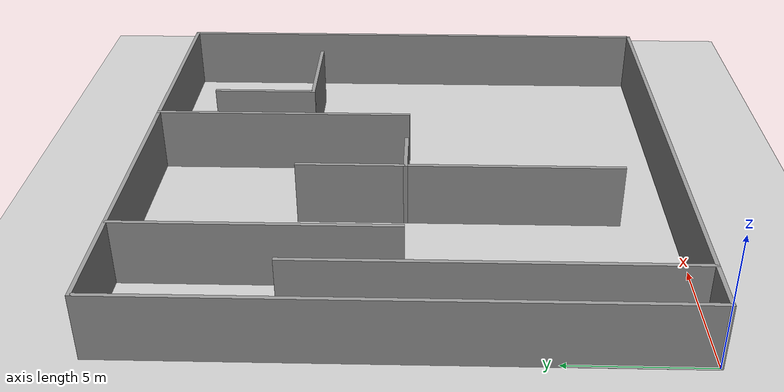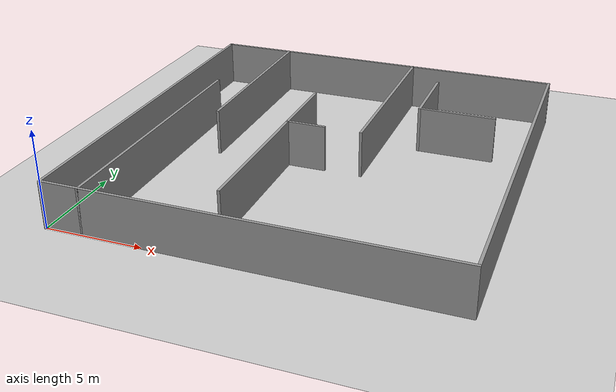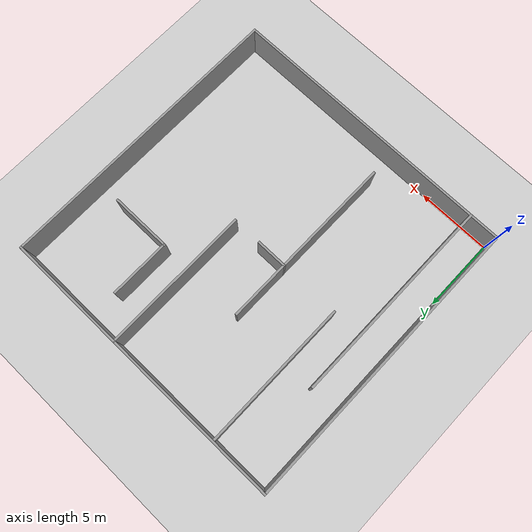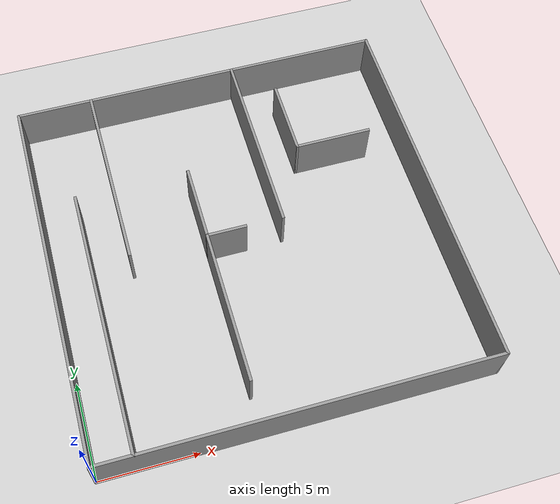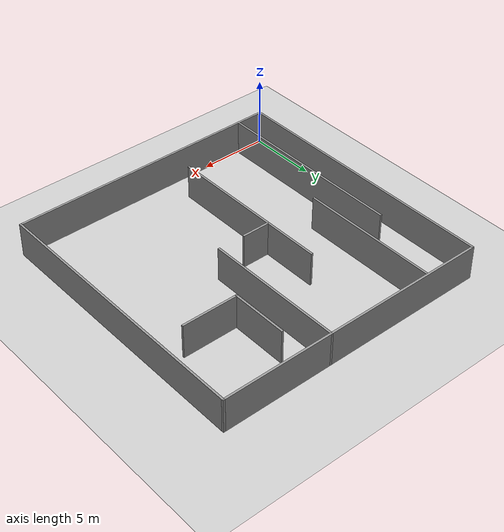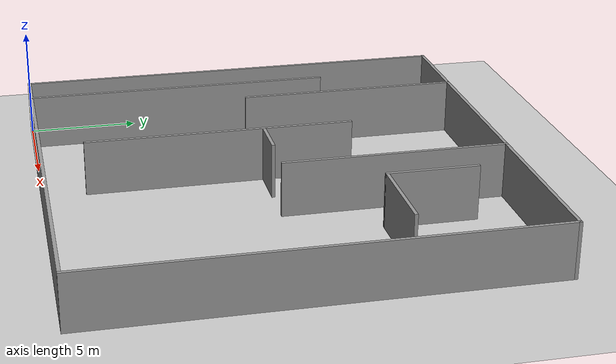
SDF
<sdf version="1.7">
 <world name="default">
  <light name="sun" type="directional">
   <pose>0 0 10 0 -0 0</pose>
   <diffuse>0.8 0.8 0.8 1</diffuse>
   <specular>0.2 0.2 0.2 1</specular>
   <attenuation>
    <range>1000</range>
    <constant>0.9</constant>
    <linear>0.01</linear>
    <quadratic>0.001</quadratic>
   </attenuation>
   <direction>-0.5 0.1 -0.9</direction>
   <spot><inner_angle>0</inner_angle><outer_angle>0</outer_angle><falloff>0</falloff></spot>
  </light>
  <model name="ground_plane">
   <static>1</static>
   <link name="link">
    <collision name="collision">
     <geometry><plane><normal>0 0 1</normal><size>100 100</size></plane></geometry>
     <surface>
      <contact><collide_bitmask>65535</collide_bitmask></contact>
      <friction><ode><mu>100</mu><mu2>50</mu2></ode></friction>
     </surface>
    </collision>
    <visual name="visual">
     <cast_shadows>0</cast_shadows>
     <geometry><plane><normal>0 0 1</normal><size>100 100</size></plane></geometry>
     <material>
      <script><uri>file://media/materials/scripts/gazebo.material</uri><name>Gazebo/Grey</name></script>
     </material>
    </visual>
   </link>
  </model>
  <gravity>0 0 -9.8</gravity>
  <magnetic_field>6e-06 2.3e-05 -4.2e-05</magnetic_field>
  <atmosphere type="adiabatic"/>
  <physics type="ode">
   <max_step_size>0.001</max_step_size>
   <real_time_factor>1</real_time_factor>
   <real_time_update_rate>1000</real_time_update_rate>
  </physics>
  <scene><ambient>0.4 0.4 0.4 1</ambient><background>0.7 0.7 0.7 1</background><shadows>1</shadows></scene>
  <spherical_coordinates>
   <surface_model>EARTH_WGS84</surface_model>
   <latitude_deg>0</latitude_deg>
   <longitude_deg>0</longitude_deg>
   <elevation>0</elevation>
   <heading_deg>0</heading_deg>
  </spherical_coordinates>
  <model name="world2">
   <pose>10 10 0 0 -0 0</pose>
   <link name="Wall_0">
    <collision name="Wall_0_Collision">
     <geometry><box><size>20.15 0.15 2.5</size></box></geometry>
     <pose>0 0 1.25 0 -0 0</pose>
    </collision>
    <visual name="Wall_0_Visual">
     <pose>0 0 1.25 0 -0 0</pose>
     <geometry><box><size>20.15 0.15 2.5</size></box></geometry>
     <material>
      <script><uri>file://media/materials/scripts/gazebo.material</uri><name>Gazebo/Grey</name></script>
      <ambient>1 1 1 1</ambient>
     </material>
     <meta><layer>0</layer></meta>
    </visual>
    <pose>-10 0 0 0 -0 1.5708</pose>
   </link>
   <link name="Wall_10">
    <collision name="Wall_10_Collision">
     <geometry><box><size>10.15 0.15 2.5</size></box></geometry>
     <pose>0 0 1.25 0 -0 0</pose>
    </collision>
    <visual name="Wall_10_Visual">
     <pose>0 0 1.25 0 -0 0</pose>
     <geometry><box><size>10.15 0.15 2.5</size></box></geometry>
     <material>
      <script><uri>file://media/materials/scripts/gazebo.material</uri><name>Gazebo/Grey</name></script>
      <ambient>1 1 1 1</ambient>
     </material>
     <meta><layer>0</layer></meta>
    </visual>
    <pose>-6 5 0 0 -0 -1.5708</pose>
   </link>
   <link name="Wall_12">
    <collision name="Wall_12_Collision">
     <geometry><box><size>12.15 0.15 2.5</size></box></geometry>
     <pose>0 0 1.25 0 -0 0</pose>
    </collision>
    <visual name="Wall_12_Visual">
     <pose>0 0 1.25 0 -0 0</pose>
     <geometry><box><size>12.15 0.15 2.5</size></box></geometry>
     <material>
      <script><uri>file://media/materials/scripts/gazebo.material</uri><name>Gazebo/Grey</name></script>
      <ambient>1 1 1 1</ambient>
     </material>
     <meta><layer>0</layer></meta>
    </visual>
    <pose>-2 -2 0 0 -0 -1.5708</pose>
   </link>
   <link name="Wall_14">
    <collision name="Wall_14_Collision">
     <geometry><box><size>2.15 0.15 2.5</size></box></geometry>
     <pose>0 0 1.25 0 -0 0</pose>
    </collision>
    <visual name="Wall_14_Visual">
     <pose>0 0 1.25 0 -0 0</pose>
     <geometry><box><size>2.15 0.15 2.5</size></box></geometry>
     <material>
      <script><uri>file://media/materials/scripts/gazebo.material</uri><name>Gazebo/Grey</name></script>
      <ambient>1 1 1 1</ambient>
     </material>
     <meta><layer>0</layer></meta>
    </visual>
    <pose>-1 0 0 0 -0 0</pose>
   </link>
   <link name="Wall_16">
    <collision name="Wall_16_Collision">
     <geometry><box><size>10.15 0.15 2.5</size></box></geometry>
     <pose>0 0 1.25 0 -0 0</pose>
    </collision>
    <visual name="Wall_16_Visual">
     <pose>0 0 1.25 0 -0 0</pose>
     <geometry><box><size>10.15 0.15 2.5</size></box></geometry>
     <material>
      <script><uri>file://media/materials/scripts/gazebo.material</uri><name>Gazebo/Grey</name></script>
      <ambient>1 1 1 1</ambient>
     </material>
     <meta><layer>0</layer></meta>
    </visual>
    <pose>2 5 0 0 -0 -1.5708</pose>
   </link>
   <link name="Wall_18">
    <collision name="Wall_18_Collision">
     <geometry><box><size>4.15 0.15 2.5</size></box></geometry>
     <pose>0 0 1.25 0 -0 0</pose>
    </collision>
    <visual name="Wall_18_Visual">
     <pose>0 0 1.25 0 -0 0</pose>
     <geometry><box><size>4.15 0.15 2.5</size></box></geometry>
     <material>
      <script><uri>file://media/materials/scripts/gazebo.material</uri><name>Gazebo/Grey</name></script>
      <ambient>1 1 1 1</ambient>
     </material>
     <meta><layer>0</layer></meta>
    </visual>
    <pose>4 6 0 0 -0 -1.5708</pose>
   </link>
   <link name="Wall_2">
    <collision name="Wall_2_Collision">
     <geometry><box><size>20.15 0.15 2.5</size></box></geometry>
     <pose>0 0 1.25 0 -0 0</pose>
    </collision>
    <visual name="Wall_2_Visual">
     <pose>0 0 1.25 0 -0 0</pose>
     <geometry><box><size>20.15 0.15 2.5</size></box></geometry>
     <material>
      <script><uri>file://media/materials/scripts/gazebo.material</uri><name>Gazebo/Grey</name></script>
      <ambient>1 1 1 1</ambient>
     </material>
     <meta><layer>0</layer></meta>
    </visual>
    <pose>0 -10 0 0 -0 0</pose>
   </link>
   <link name="Wall_22">
    <collision name="Wall_22_Collision">
     <geometry><box><size>4.15 0.15 2.5</size></box></geometry>
     <pose>0 0 1.25 0 -0 0</pose>
    </collision>
    <visual name="Wall_22_Visual">
     <pose>0 0 1.25 0 -0 0</pose>
     <geometry><box><size>4.15 0.15 2.5</size></box></geometry>
     <material>
      <script><uri>file://media/materials/scripts/gazebo.material</uri><name>Gazebo/Grey</name></script>
      <ambient>1 1 1 1</ambient>
     </material>
     <meta><layer>0</layer></meta>
    </visual>
    <pose>6 4 0 0 -0 0</pose>
   </link>
   <link name="Wall_4">
    <collision name="Wall_4_Collision">
     <geometry><box><size>20.15 0.15 2.5</size></box></geometry>
     <pose>0 0 1.25 0 -0 0</pose>
    </collision>
    <visual name="Wall_4_Visual">
     <pose>0 0 1.25 0 -0 0</pose>
     <geometry><box><size>20.15 0.15 2.5</size></box></geometry>
     <material>
      <script><uri>file://media/materials/scripts/gazebo.material</uri><name>Gazebo/Grey</name></script>
      <ambient>1 1 1 1</ambient>
     </material>
     <meta><layer>0</layer></meta>
    </visual>
    <pose>10 0 0 0 -0 1.5708</pose>
   </link>
   <link name="Wall_6">
    <collision name="Wall_6_Collision">
     <geometry><box><size>20.15 0.15 2.5</size></box></geometry>
     <pose>0 0 1.25 0 -0 0</pose>
    </collision>
    <visual name="Wall_6_Visual">
     <pose>0 0 1.25 0 -0 0</pose>
     <geometry><box><size>20.15 0.15 2.5</size></box></geometry>
     <material>
      <script><uri>file://media/materials/scripts/gazebo.material</uri><name>Gazebo/Grey</name></script>
      <ambient>1 1 1 1</ambient>
     </material>
     <meta><layer>0</layer></meta>
    </visual>
    <pose>0 10 0 0 -0 3.14159</pose>
   </link>
   <link name="Wall_8">
    <collision name="Wall_8_Collision">
     <geometry><box><size>14.15 0.15 2.5</size></box></geometry>
     <pose>0 0 1.25 0 -0 0</pose>
    </collision>
    <visual name="Wall_8_Visual">
     <pose>0 0 1.25 0 -0 0</pose>
     <geometry><box><size>14.15 0.15 2.5</size></box></geometry>
     <material>
      <script><uri>file://media/materials/scripts/gazebo.material</uri><name>Gazebo/Grey</name></script>
      <ambient>1 1 1 1</ambient>
     </material>
     <meta><layer>0</layer></meta>
    </visual>
    <pose>-8 -3 0 0 -0 1.5708</pose>
   </link>
   <static>1</static>
  </model>
 </world>
</sdf>
